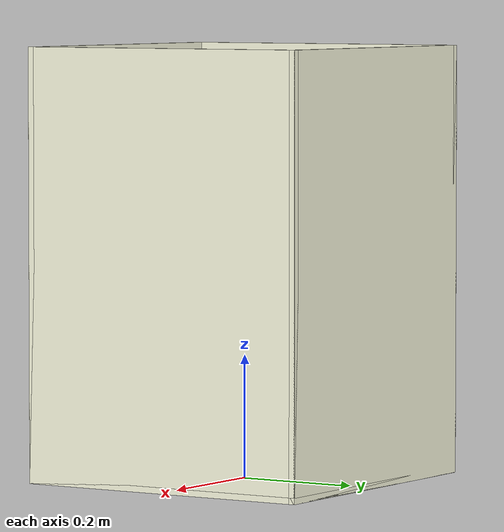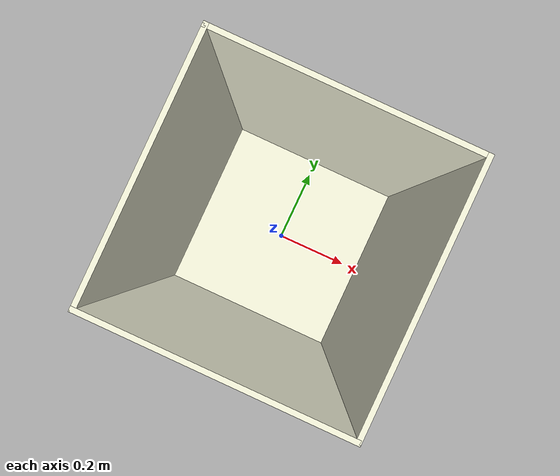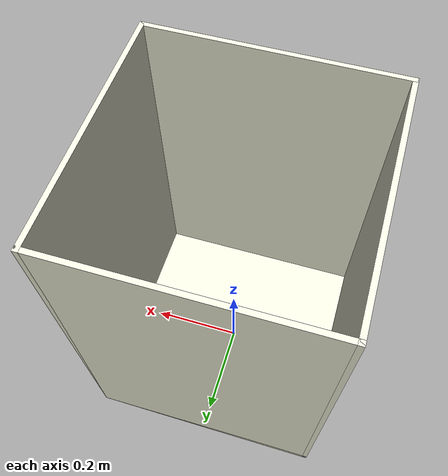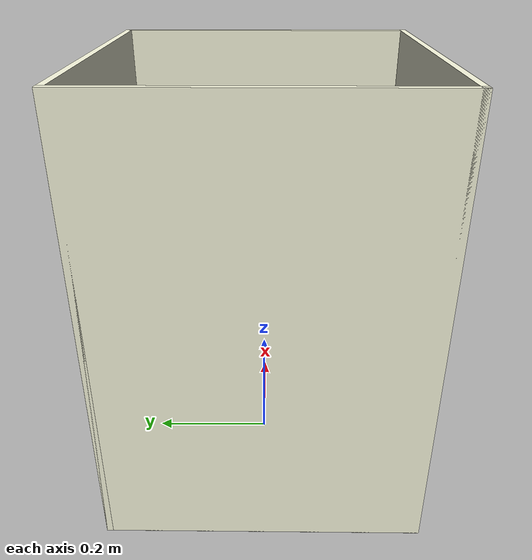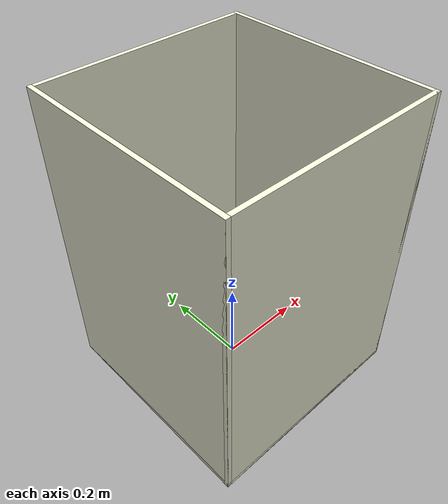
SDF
<?xml version="1.0" ?>
<sdf version="1.6">
    <model name="box">
        <static>true</static>
        <pose>0 0 0.35 0 0 0</pose>
        <link name="floor">
            <pose>0 0 -0.345 0 0 0</pose>
            <visual name="visual">
                <geometry>
                    <box>
                        <size>0.5 0.5 0.01</size>
                    </box>
                </geometry>
                <material>
                    <ambient>0.96 0.96 0.86 1</ambient>
                    <diffuse>0.96 0.96 0.86 1</diffuse>
                    <specular>0.1 0.1 0.1 1</specular>
                </material>
            </visual>
            <collision name="collision">
                <geometry>
                    <box>
                        <size>0.5 0.5 0.01</size>
                    </box>
                </geometry>
                <surface>
                    <contact>
                        <ode/>
                    </contact>
                    <bounce/>
                    <friction>
                        <ode/>
                    </friction>
                </surface>
            </collision>
        </link>
        <!-- Wall 1 -->
        <link name="wall1">
            <pose>-0.245 0 0 0 0 0</pose>
            <visual name="visual">
                <geometry>
                    <box>
                        <size>0.01 0.5 0.7</size>
                    </box>
                </geometry>
                <material>
                    <ambient>0.96 0.96 0.86 1</ambient>
                    <diffuse>0.96 0.96 0.86 1</diffuse>
                    <specular>0.1 0.1 0.1 1</specular>
                </material>
            </visual>
            <collision name="collision">
                <geometry>
                    <box>
                        <size>0.01 0.5 0.7</size>
                    </box>
                </geometry>
                <surface>
                    <contact>
                        <ode/>
                    </contact>
                    <bounce/>
                    <friction>
                        <ode/>
                    </friction>
                </surface>
            </collision>
        </link>
        <!-- Wall 2 -->
        <link name="wall2">
            <pose>0.245 0 0 0 0 0</pose>
            <visual name="visual">
                <geometry>
                    <box>
                        <size>0.01 0.5 0.7</size>
                    </box>
                </geometry>
                <material>
                    <ambient>0.96 0.96 0.86 1</ambient>
                    <diffuse>0.96 0.96 0.86 1</diffuse>
                    <specular>0.1 0.1 0.1 1</specular>
                </material>
            </visual>
            <collision name="collision">
                <geometry>
                    <box>
                        <size>0.01 0.5 0.7</size>
                    </box>
                </geometry>
                <surface>
                    <contact>
                        <ode/>
                    </contact>
                    <bounce/>
                    <friction>
                        <ode/>
                    </friction>
                </surface>
            </collision>
        </link>
        <!-- Wall 3 -->
        <link name="wall3">
            <pose>0 -0.245 0 0 0 0</pose>
            <visual name="visual">
                <geometry>
                    <box>
                        <size>0.5 0.01 0.7</size>
                    </box>
                </geometry>
                <material>
                    <ambient>0.96 0.96 0.86 1</ambient>
                    <diffuse>0.96 0.96 0.86 1</diffuse>
                    <specular>0.1 0.1 0.1 1</specular>
                </material>
            </visual>
            <collision name="collision">
                <geometry>
                    <box>
                        <size>0.5 0.01 0.7</size>
                    </box>
                </geometry>
                <surface>
                    <contact>
                        <ode/>
                    </contact>
                    <bounce/>
                    <friction>
                        <ode/>
                    </friction>
                </surface>
            </collision>
        </link>
        <!-- Wall 4 -->
        <link name="wall4">
            <pose>0 0.245 0 0 0 0</pose>
            <visual name="visual">
                <geometry>
                    <box>
                        <size>0.5 0.01 0.7</size>
                    </box>
                </geometry>
                <material>
                    <ambient>0.96 0.96 0.86 1</ambient>
                    <diffuse>0.96 0.96 0.86 1</diffuse>
                    <specular>0.1 0.1 0.1 1</specular>
                </material>
            </visual>
            <collision name="collision">
                <geometry>
                    <box>
                        <size>0.5 0.01 0.7</size>
                    </box>
                </geometry>
                <surface>
                    <contact>
                        <ode/>
                    </contact>
                    <bounce/>
                    <friction>
                        <ode/>
                    </friction>
                </surface>
            </collision>
        </link>
    </model>
</sdf>
